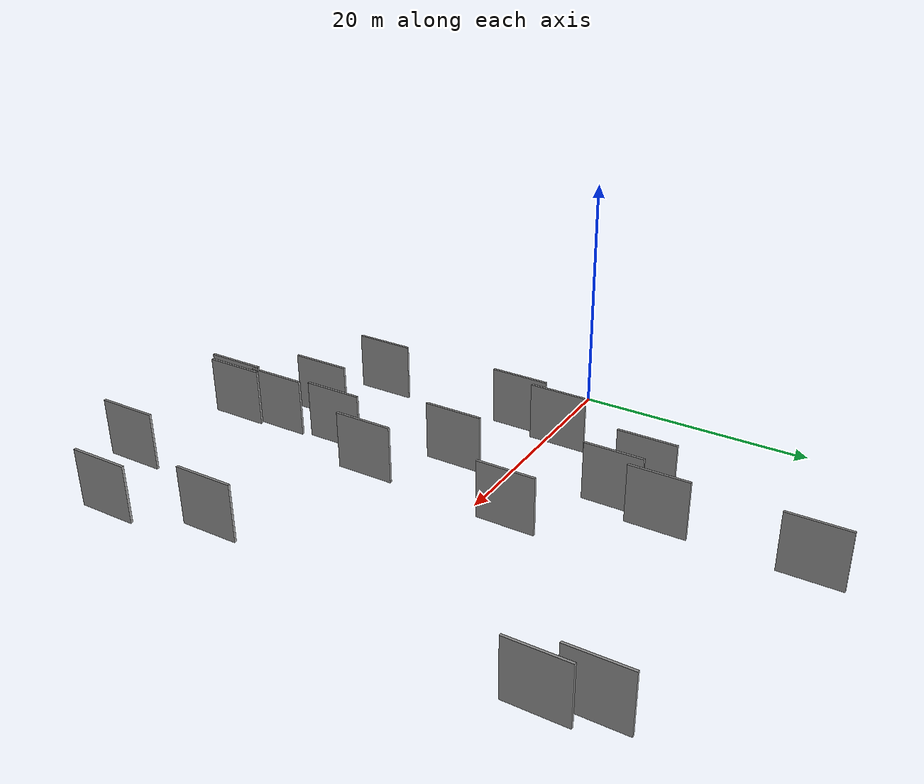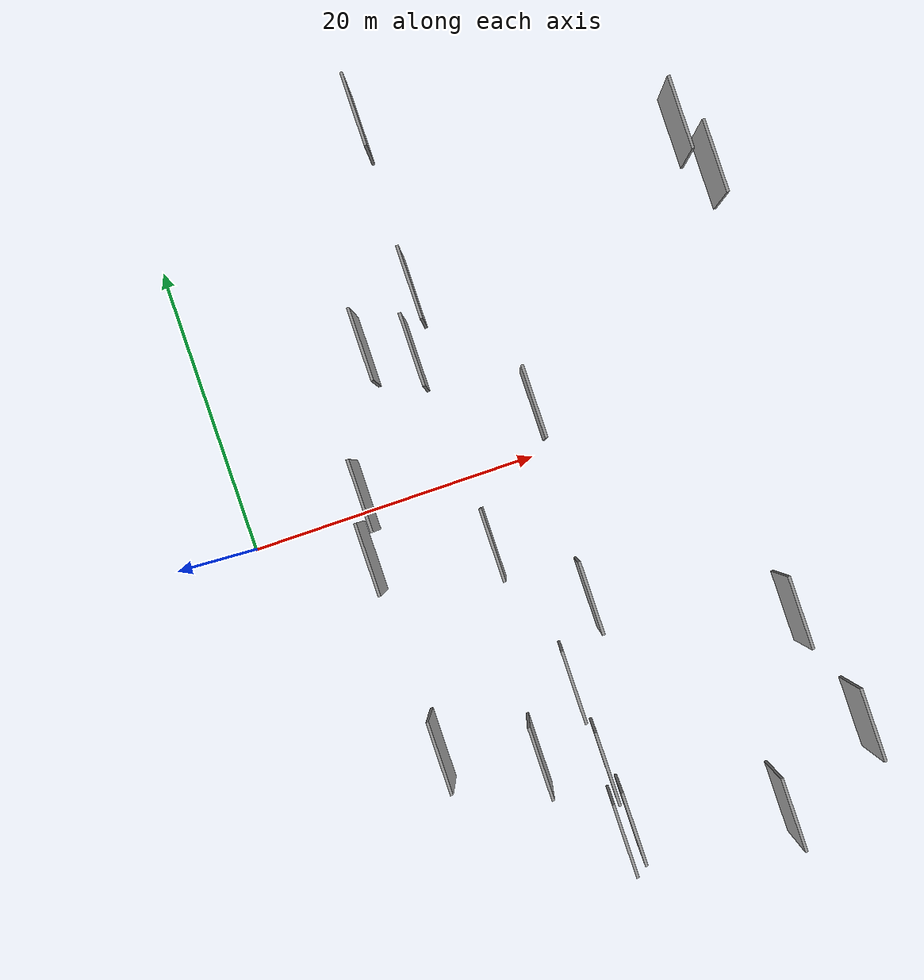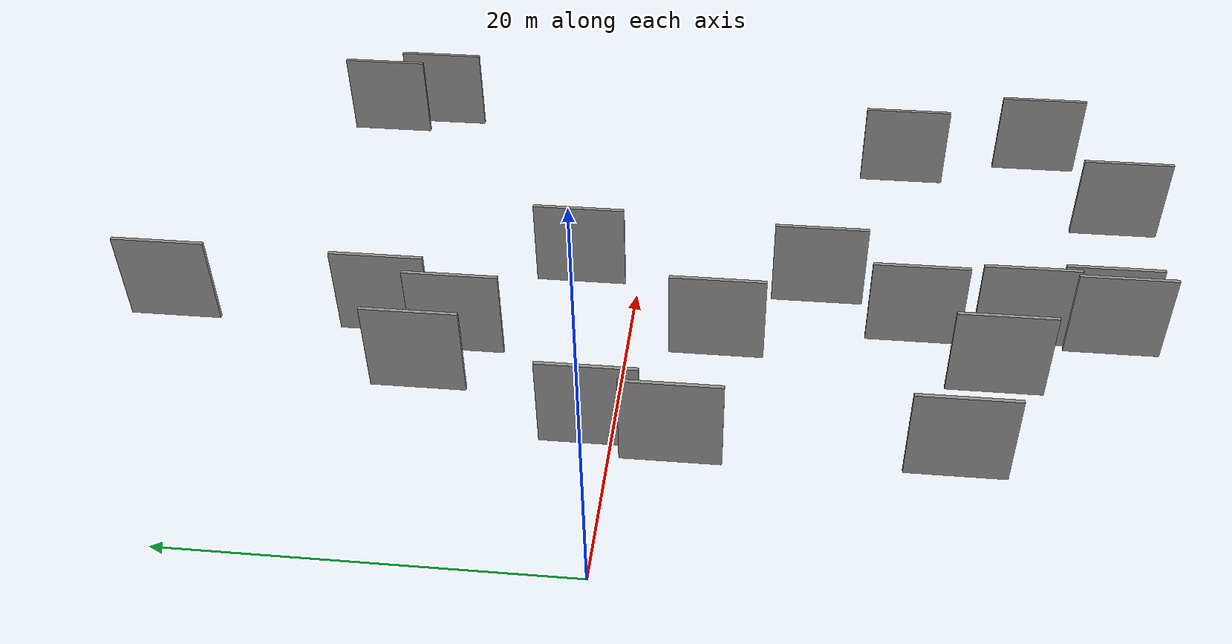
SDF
<sdf version="1.6">
 <world name="default">
  <scene>
   <sky><clouds><speed>12</speed></clouds></sky>
   <ambient>0.4 0.4 0.4 1</ambient>
   <background>0.7 0.7 0.7 1</background>
   <shadows>1</shadows>
  </scene>
  <gravity>0 0 -9.8066</gravity>
  <magnetic_field>6e-06 2.3e-05 -4.2e-05</magnetic_field>
  <physics default="0" name="default_physics" type="ode">
   <ode>
    <solver>
     <type>quick</type>
     <iters>10</iters>
     <sor>1.0</sor>
     <use_dynamic_moi_rescaling>0</use_dynamic_moi_rescaling>
    </solver>
    <constraints>
     <cfm>0</cfm>
     <erp>0.2</erp>
     <contact_max_correcting_vel>100</contact_max_correcting_vel>
     <contact_surface_layer>0.001</contact_surface_layer>
    </constraints>
   </ode>
   <max_step_size>0.004</max_step_size>
   <real_time_factor>1</real_time_factor>
   <real_time_update_rate>250</real_time_update_rate>
  </physics>
  <light name="sun" type="directional">
   <pose>0 0 10 0 0 0</pose>
   <diffuse>0.8 0.8 0.8 1</diffuse>
   <specular>0.2 0.2 0.2 1</specular>
   <attenuation>
    <range>1000</range>
    <constant>0.9</constant>
    <linear>0.01</linear>
    <quadratic>0.001</quadratic>
   </attenuation>
   <direction>-0.5 0.1 -0.9</direction>
  </light>
  <model name="grey_wall_1">
   <static>1</static>
   <pose>18.0232 -20.7523 0.0 0.000000 0.000000 1.570796</pose>
   <link name="link">
    <pose>0 0 2.50 0 0 0</pose>
    <collision name="collision"><geometry><box><size>5.00 0.2 5.00</size></box></geometry></collision>
    <visual name="visual">
     <cast_shadows>0</cast_shadows>
     <geometry><box><size>5.00 0.2 5.00</size></box></geometry>
     <material>
      <script>
       <uri>model://grey_wall/materials/scripts</uri>
       <uri>model://grey_wall/materials/textures</uri>
       <name>vrc/grey_wall</name>
      </script>
     </material>
    </visual>
   </link>
  </model>
  <model name="grey_wall_2">
   <static>1</static>
   <pose>16.0861 24.9882 0.0 0.000000 0.000000 1.570796</pose>
   <link name="link">
    <pose>0 0 2.50 0 0 0</pose>
    <collision name="collision"><geometry><box><size>5.00 0.2 5.00</size></box></geometry></collision>
    <visual name="visual">
     <cast_shadows>0</cast_shadows>
     <geometry><box><size>5.00 0.2 5.00</size></box></geometry>
     <material>
      <script>
       <uri>model://grey_wall/materials/scripts</uri>
       <uri>model://grey_wall/materials/textures</uri>
       <name>vrc/grey_wall</name>
      </script>
     </material>
    </visual>
   </link>
  </model>
  <model name="grey_wall_3">
   <static>1</static>
   <pose>36.1155 17.9932 0.0 0.000000 0.000000 1.570796</pose>
   <link name="link">
    <pose>0 0 2.50 0 0 0</pose>
    <collision name="collision"><geometry><box><size>5.00 0.2 5.00</size></box></geometry></collision>
    <visual name="visual">
     <cast_shadows>0</cast_shadows>
     <geometry><box><size>5.00 0.2 5.00</size></box></geometry>
     <material>
      <script>
       <uri>model://grey_wall/materials/scripts</uri>
       <uri>model://grey_wall/materials/textures</uri>
       <name>vrc/grey_wall</name>
      </script>
     </material>
    </visual>
   </link>
  </model>
  <model name="grey_wall_4">
   <static>1</static>
   <pose>7.9356 -16.6146 0.0 0.000000 0.000000 1.570796</pose>
   <link name="link">
    <pose>0 0 2.50 0 0 0</pose>
    <collision name="collision"><geometry><box><size>5.00 0.2 5.00</size></box></geometry></collision>
    <visual name="visual">
     <cast_shadows>0</cast_shadows>
     <geometry><box><size>5.00 0.2 5.00</size></box></geometry>
     <material>
      <script>
       <uri>model://grey_wall/materials/scripts</uri>
       <uri>model://grey_wall/materials/textures</uri>
       <name>vrc/grey_wall</name>
      </script>
     </material>
    </visual>
   </link>
  </model>
  <model name="grey_wall_5">
   <static>1</static>
   <pose>28.4817 -27.4013 0.0 0.000000 0.000000 1.570796</pose>
   <link name="link">
    <pose>0 0 2.50 0 0 0</pose>
    <collision name="collision"><geometry><box><size>5.00 0.2 5.00</size></box></geometry></collision>
    <visual name="visual">
     <cast_shadows>0</cast_shadows>
     <geometry><box><size>5.00 0.2 5.00</size></box></geometry>
     <material>
      <script>
       <uri>model://grey_wall/materials/scripts</uri>
       <uri>model://grey_wall/materials/textures</uri>
       <name>vrc/grey_wall</name>
      </script>
     </material>
    </visual>
   </link>
  </model>
  <model name="grey_wall_6">
   <static>1</static>
   <pose>14.6880 9.0105 0.0 0.000000 0.000000 1.570796</pose>
   <link name="link">
    <pose>0 0 2.50 0 0 0</pose>
    <collision name="collision"><geometry><box><size>5.00 0.2 5.00</size></box></geometry></collision>
    <visual name="visual">
     <cast_shadows>0</cast_shadows>
     <geometry><box><size>5.00 0.2 5.00</size></box></geometry>
     <material>
      <script>
       <uri>model://grey_wall/materials/scripts</uri>
       <uri>model://grey_wall/materials/textures</uri>
       <name>vrc/grey_wall</name>
      </script>
     </material>
    </visual>
   </link>
  </model>
  <model name="grey_wall_7">
   <static>1</static>
   <pose>11.6322 10.4005 0.0 0.000000 0.000000 1.570796</pose>
   <link name="link">
    <pose>0 0 2.50 0 0 0</pose>
    <collision name="collision"><geometry><box><size>5.00 0.2 5.00</size></box></geometry></collision>
    <visual name="visual">
     <cast_shadows>0</cast_shadows>
     <geometry><box><size>5.00 0.2 5.00</size></box></geometry>
     <material>
      <script>
       <uri>model://grey_wall/materials/scripts</uri>
       <uri>model://grey_wall/materials/textures</uri>
       <name>vrc/grey_wall</name>
      </script>
     </material>
    </visual>
   </link>
  </model>
  <model name="grey_wall_8">
   <static>1</static>
   <pose>7.6133 -2.9683 0.0 0.000000 0.000000 1.570796</pose>
   <link name="link">
    <pose>0 0 2.50 0 0 0</pose>
    <collision name="collision"><geometry><box><size>5.00 0.2 5.00</size></box></geometry></collision>
    <visual name="visual">
     <cast_shadows>0</cast_shadows>
     <geometry><box><size>5.00 0.2 5.00</size></box></geometry>
     <material>
      <script>
       <uri>model://grey_wall/materials/scripts</uri>
       <uri>model://grey_wall/materials/textures</uri>
       <name>vrc/grey_wall</name>
      </script>
     </material>
    </visual>
   </link>
  </model>
  <model name="grey_wall_9">
   <static>1</static>
   <pose>8.4627 1.1074 0.0 0.000000 0.000000 1.570796</pose>
   <link name="link">
    <pose>0 0 2.50 0 0 0</pose>
    <collision name="collision"><geometry><box><size>5.00 0.2 5.00</size></box></geometry></collision>
    <visual name="visual">
     <cast_shadows>0</cast_shadows>
     <geometry><box><size>5.00 0.2 5.00</size></box></geometry>
     <material>
      <script>
       <uri>model://grey_wall/materials/scripts</uri>
       <uri>model://grey_wall/materials/textures</uri>
       <name>vrc/grey_wall</name>
      </script>
     </material>
    </visual>
   </link>
  </model>
  <model name="grey_wall_10">
   <static>1</static>
   <pose>14.0413 -19.0439 0.0 0.000000 0.000000 1.570796</pose>
   <link name="link">
    <pose>0 0 2.50 0 0 0</pose>
    <collision name="collision"><geometry><box><size>5.00 0.2 5.00</size></box></geometry></collision>
    <visual name="visual">
     <cast_shadows>0</cast_shadows>
     <geometry><box><size>5.00 0.2 5.00</size></box></geometry>
     <material>
      <script>
       <uri>model://grey_wall/materials/scripts</uri>
       <uri>model://grey_wall/materials/textures</uri>
       <name>vrc/grey_wall</name>
      </script>
     </material>
    </visual>
   </link>
  </model>
  <model name="grey_wall_11">
   <static>1</static>
   <pose>21.1337 3.2868 0.0 0.000000 0.000000 1.570796</pose>
   <link name="link">
    <pose>0 0 2.50 0 0 0</pose>
    <collision name="collision"><geometry><box><size>5.00 0.2 5.00</size></box></geometry></collision>
    <visual name="visual">
     <cast_shadows>0</cast_shadows>
     <geometry><box><size>5.00 0.2 5.00</size></box></geometry>
     <material>
      <script>
       <uri>model://grey_wall/materials/scripts</uri>
       <uri>model://grey_wall/materials/textures</uri>
       <name>vrc/grey_wall</name>
      </script>
     </material>
    </visual>
   </link>
  </model>
  <model name="grey_wall_12">
   <static>1</static>
   <pose>15.9284 13.1924 0.0 0.000000 0.000000 1.570796</pose>
   <link name="link">
    <pose>0 0 2.50 0 0 0</pose>
    <collision name="collision"><geometry><box><size>5.00 0.2 5.00</size></box></geometry></collision>
    <visual name="visual">
     <cast_shadows>0</cast_shadows>
     <geometry><box><size>5.00 0.2 5.00</size></box></geometry>
     <material>
      <script>
       <uri>model://grey_wall/materials/scripts</uri>
       <uri>model://grey_wall/materials/textures</uri>
       <name>vrc/grey_wall</name>
      </script>
     </material>
    </visual>
   </link>
  </model>
  <model name="grey_wall_13">
   <static>1</static>
   <pose>17.6275 -25.4972 0.0 0.000000 0.000000 1.570796</pose>
   <link name="link">
    <pose>0 0 2.50 0 0 0</pose>
    <collision name="collision"><geometry><box><size>5.00 0.2 5.00</size></box></geometry></collision>
    <visual name="visual">
     <cast_shadows>0</cast_shadows>
     <geometry><box><size>5.00 0.2 5.00</size></box></geometry>
     <material>
      <script>
       <uri>model://grey_wall/materials/scripts</uri>
       <uri>model://grey_wall/materials/textures</uri>
       <name>vrc/grey_wall</name>
      </script>
     </material>
    </visual>
   </link>
  </model>
  <model name="grey_wall_14">
   <static>1</static>
   <pose>20.5520 -9.9578 0.0 0.000000 0.000000 1.570796</pose>
   <link name="link">
    <pose>0 0 2.50 0 0 0</pose>
    <collision name="collision"><geometry><box><size>5.00 0.2 5.00</size></box></geometry></collision>
    <visual name="visual">
     <cast_shadows>0</cast_shadows>
     <geometry><box><size>5.00 0.2 5.00</size></box></geometry>
     <material>
      <script>
       <uri>model://grey_wall/materials/scripts</uri>
       <uri>model://grey_wall/materials/textures</uri>
       <name>vrc/grey_wall</name>
      </script>
     </material>
    </visual>
   </link>
  </model>
  <model name="grey_wall_15">
   <static>1</static>
   <pose>18.4075 -24.9637 0.0 0.000000 0.000000 1.570796</pose>
   <link name="link">
    <pose>0 0 2.50 0 0 0</pose>
    <collision name="collision"><geometry><box><size>5.00 0.2 5.00</size></box></geometry></collision>
    <visual name="visual">
     <cast_shadows>0</cast_shadows>
     <geometry><box><size>5.00 0.2 5.00</size></box></geometry>
     <material>
      <script>
       <uri>model://grey_wall/materials/scripts</uri>
       <uri>model://grey_wall/materials/textures</uri>
       <name>vrc/grey_wall</name>
      </script>
     </material>
    </visual>
   </link>
  </model>
  <model name="grey_wall_16">
   <static>1</static>
   <pose>35.1858 -23.5347 0.0 0.000000 0.000000 1.570796</pose>
   <link name="link">
    <pose>0 0 2.50 0 0 0</pose>
    <collision name="collision"><geometry><box><size>5.00 0.2 5.00</size></box></geometry></collision>
    <visual name="visual">
     <cast_shadows>0</cast_shadows>
     <geometry><box><size>5.00 0.2 5.00</size></box></geometry>
     <material>
      <script>
       <uri>model://grey_wall/materials/scripts</uri>
       <uri>model://grey_wall/materials/textures</uri>
       <name>vrc/grey_wall</name>
      </script>
     </material>
    </visual>
   </link>
  </model>
  <model name="grey_wall_17">
   <static>1</static>
   <pose>15.5794 -4.6722 0.0 0.000000 0.000000 1.570796</pose>
   <link name="link">
    <pose>0 0 2.50 0 0 0</pose>
    <collision name="collision"><geometry><box><size>5.00 0.2 5.00</size></box></geometry></collision>
    <visual name="visual">
     <cast_shadows>0</cast_shadows>
     <geometry><box><size>5.00 0.2 5.00</size></box></geometry>
     <material>
      <script>
       <uri>model://grey_wall/materials/scripts</uri>
       <uri>model://grey_wall/materials/textures</uri>
       <name>vrc/grey_wall</name>
      </script>
     </material>
    </visual>
   </link>
  </model>
  <model name="grey_wall_18">
   <static>1</static>
   <pose>33.0906 -15.1707 0.0 0.000000 0.000000 1.570796</pose>
   <link name="link">
    <pose>0 0 2.50 0 0 0</pose>
    <collision name="collision"><geometry><box><size>5.00 0.2 5.00</size></box></geometry></collision>
    <visual name="visual">
     <cast_shadows>0</cast_shadows>
     <geometry><box><size>5.00 0.2 5.00</size></box></geometry>
     <material>
      <script>
       <uri>model://grey_wall/materials/scripts</uri>
       <uri>model://grey_wall/materials/textures</uri>
       <name>vrc/grey_wall</name>
      </script>
     </material>
    </visual>
   </link>
  </model>
  <model name="grey_wall_19">
   <static>1</static>
   <pose>37.3563 14.6044 0.0 0.000000 0.000000 1.570796</pose>
   <link name="link">
    <pose>0 0 2.50 0 0 0</pose>
    <collision name="collision"><geometry><box><size>5.00 0.2 5.00</size></box></geometry></collision>
    <visual name="visual">
     <cast_shadows>0</cast_shadows>
     <geometry><box><size>5.00 0.2 5.00</size></box></geometry>
     <material>
      <script>
       <uri>model://grey_wall/materials/scripts</uri>
       <uri>model://grey_wall/materials/textures</uri>
       <name>vrc/grey_wall</name>
      </script>
     </material>
    </visual>
   </link>
  </model>
  <model name="grey_wall_20">
   <static>1</static>
   <pose>17.6524 -15.0622 0.0 0.000000 0.000000 1.570796</pose>
   <link name="link">
    <pose>0 0 2.50 0 0 0</pose>
    <collision name="collision"><geometry><box><size>5.00 0.2 5.00</size></box></geometry></collision>
    <visual name="visual">
     <cast_shadows>0</cast_shadows>
     <geometry><box><size>5.00 0.2 5.00</size></box></geometry>
     <material>
      <script>
       <uri>model://grey_wall/materials/scripts</uri>
       <uri>model://grey_wall/materials/textures</uri>
       <name>vrc/grey_wall</name>
      </script>
     </material>
    </visual>
   </link>
  </model>
 </world>
</sdf>
